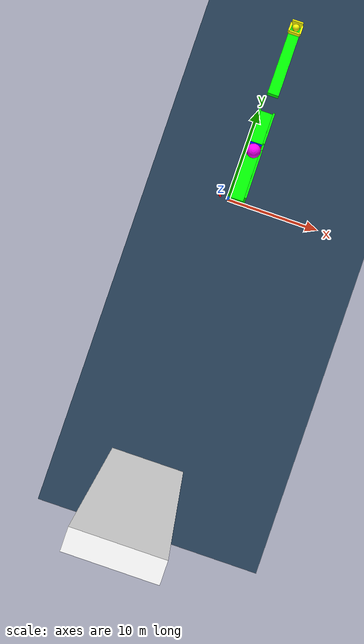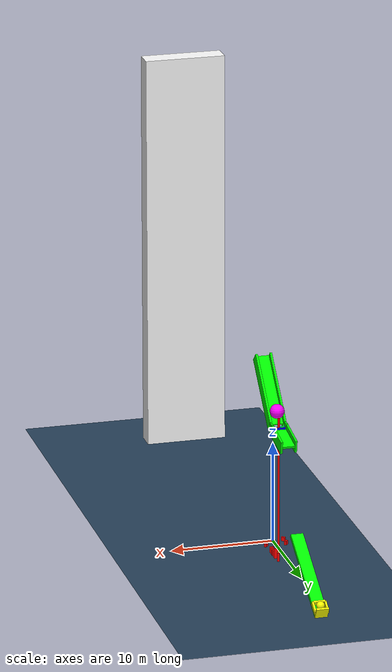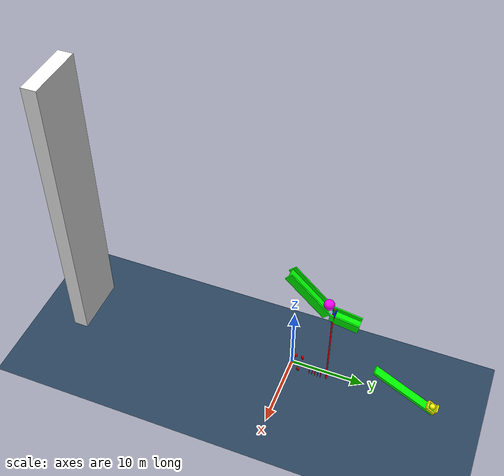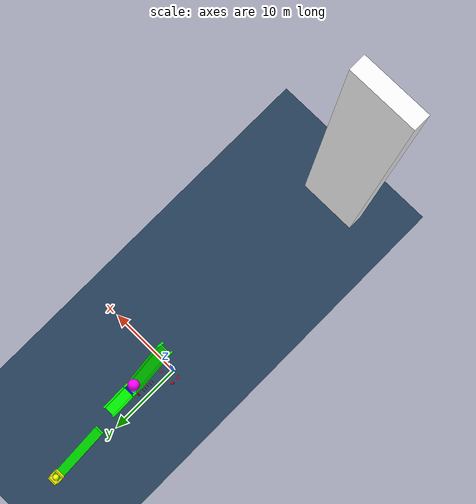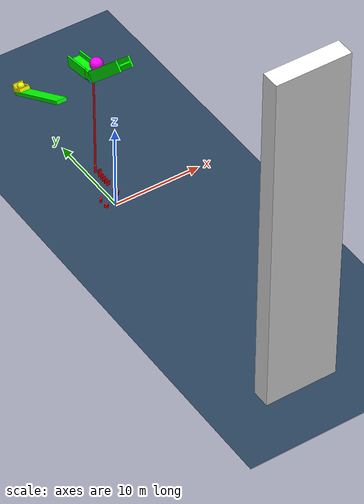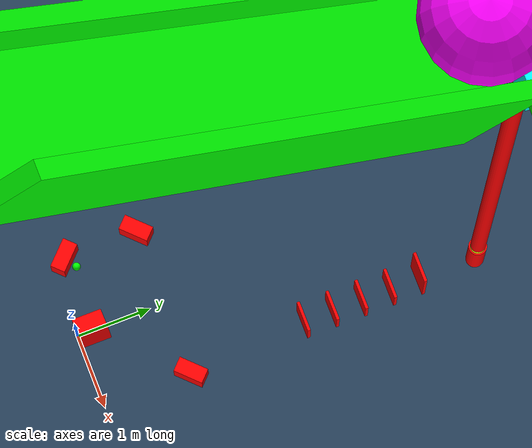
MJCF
<mujoco model="rube_goldberg_machines">

  <visual>
    <headlight diffuse="0.6 0.6 0.6"  ambient="0.3 0.3 0.3" specular="0 0 0"/>
    <rgba haze="0.15 0.25 0.35 1"/>
    <global azimuth="120" elevation="-20" realtime="1.0"/>
  </visual>

  <asset>
    <texture type="skybox" builtin="gradient" rgb1="0.3 0.5 0.7" rgb2="0 0 0" width="512"
        height="3072"/>
    <texture type="2d" name="groundplane" builtin="checker" mark="edge" rgb1="0.2 0.3 0.4"
        rgb2="0.1 0.2 0.3" markrgb="0.8 0.8 0.8" width="300" height="300"/>
    <material name="groundplane" texture="groundplane" texuniform="true" texrepeat="5 5"
        reflectance="0.1"/>
  </asset>

  <worldbody>
    <geom name="floor" size="0 0 0.05" type="plane" material="groundplane"/>

    <body pos="0.0 0.2 0.2" euler="0 45 0" name="red_slide">
      <geom  type="box" size="0.1 0.2 0.2" rgba="1 0 0 1"  solref="-10000 -10"/>
    </body>

    <body pos="-1 0.2 0.2" euler="0 0 45" name="red_slide_2">
      <geom  type="box" size="0.1 0.2 0.2" rgba="1 0 0 1"  solref="-10000 -10"/>
    </body>

    <body pos="-1 1.2 0.2" euler="0 0 -45" name="red_slide_3">
      <geom  type="box" size="0.1 0.2 0.2" rgba="1 0 0 1"  solref="-10000 -10"/>
    </body>

    <body pos="1 1.2 0.2" euler="0 0 -45" name="red_slide_4">
      <geom  type="box" size="0.1 0.2 0.2" rgba="1 0 0 1"  solref="-10000 -10"/>
    </body>

    <body pos="0.9 2.8 0.3" euler="0 0 0" name="kick_bar">
      <geom  type="box" size="0.2 0.02 0.3" rgba="1 0 0 1"  solref="-10000 -10"/>
      <freejoint/>
    </body>

    <body pos="0.9 3.2 0.3" euler="0 0 0" name="kick_bar2">
      <geom  type="box" size="0.2 0.02 0.3" rgba="1 0 0 1"  solref="-10000 -10"/>
      <freejoint/>
    </body>

    <body pos="0.9 3.6 0.3" euler="0 0 0" name="kick_bar3">
      <geom  type="box" size="0.2 0.02 0.3" rgba="1 0 0 1"  solref="-10000 -10"/>
      <freejoint/>
    </body>

    <body pos="0.9 4.0 0.3" euler="0 0 0" name="kick_bar4">
      <geom  type="box" size="0.2 0.02 0.3" rgba="1 0 0 1"  solref="-10000 -10"/>
      <freejoint/>
    </body>

    <body pos="0.9 4.4 0.5" euler="0 0 0" name="kick_bar5">
      <geom  type="box" size="0.2 0.02 0.5" rgba="1 0 0 1"  solref="-10000 -10" mass="350"/>
      <freejoint/>
    </body>

    <body pos="0.9 5.2 0.45" euler="0 0 0" name="drop_cylinder1">
      <geom  type="cylinder" size="0.12 0.45" rgba="1 0 0 1"  solref="-10000 -10" mass="100"/>
      <freejoint/>
    </body>

    <body pos="0.9 5.2 7.7" euler="0 0 0" name="drop_cylinder2">
      <geom  type="cylinder" size="0.1 6.7" rgba="1 0 0 1"  solref="-10000 -10" friction="0 0 0"/>
      <geom pos="0 0 -6.75" type="cylinder" size="0.1 0.05" rgba="1 1 0 1"  solref="-10000 -10" />
      <freejoint/>
    </body>

    <body name="holed_plate" pos="0.9 5.2 13.0">
      <geom pos="0 -0.20 0" size="0.6 0.1 0.5" type="box" group="0" rgba="0 1 1 1" />
      <geom pos="0 0.20 0" size="0.6 0.1 0.5" type="box" group="0" rgba="0 0 1 1" />
      <geom pos="-0.35 0 0" size="0.25 0.1 0.5" type="box" group="0" rgba="0 1 0 1" />
      <geom pos="0.35 0 0" size="0.25 0.1 0.5" type="box" group="0" rgba="1 0 0 1" />

      <geom pos="-0.7 0 0.4" type="box" size="0.1 0.3 0.5" rgba="0 1 0 1"  solref="-10000 -10"/>
      <geom pos="0.7 0 0.4" type="box" size="0.1 0.3 0.5" rgba="0 1 0 1"  solref="-10000 -10"/>
    </body>

    <body pos="0.9 7.1 13.0" euler="-10 0 0" name="ball_line_bottom">
      <geom  type="box" size="0.6 1.6 0.1" rgba="0 1 0 1"  solref="-10000 -10"/>
      <geom pos="-0.7 0 0" type="box" size="0.1 1.6 0.6" rgba="0 1 0 1"  solref="-10000 -10"/>
      <geom pos="0.7 0 0" type="box" size="0.1 1.6 0.6" rgba="0 1 0 1"  solref="-10000 -10"/>
    </body>

    <body pos="0.9 2.0 16.1" euler="-45 0 0" name="ball_line_up">
      <geom  type="box" size="0.6 3.6 0.1" rgba="0 1 0 1"  solref="-10000 -10"/>
      <geom pos="-0.7 0 0" type="box" size="0.1 3.6 0.6" rgba="0 1 0 1"  solref="-10000 -10"/>
      <geom pos="0.7 0 0" type="box" size="0.1 3.6 0.6" rgba="0 1 0 1"  solref="-10000 -10"/>
    </body>

    <body pos="0.9 4.6 14.9" name="big_sphere">
      <geom  size="0.7" rgba="1 0 1 1" solref="-10000 -10" density="340" />
      <freejoint/>
    </body>

    <body pos="0.9 15.6 2.6" euler="-30 0 0">
      <geom  type="box" size="0.6 4.8 0.2" rgba="0 1 0 1"  solref="-10000 -10" mass = "1"/>
      <joint name="J1" type="hinge" pos="0 -1.6 0" axis="1 0 0"  limited="true" range="0 60"/>
      <body pos="0 4.2 0.40" >
        <geom pos=" 0.6 0   0" type="box" size="0.1 0.6 0.2" rgba="1 1 0 1" mass="1"/>
        <geom pos="-0.6 0   0" type="box" size="0.1 0.6 0.2" rgba="1 1 0 1" mass="1"/>
        <geom pos=" 0   0.6 0" type="box" size="0.6 0.1 0.6" rgba="1 1 0 1" mass="1"/>
        <geom pos=" 0  -0.6 0" type="box" size="0.6 0.1 0.2" rgba="1 1 0 1" mass="1"/>
      </body>
    </body>

    <body pos="0.9 19.55 1.1" name="throw_ball">
      <freejoint/>
      <geom  size="0.4" rgba="1 1 0 1" solref="-10000 -10" density="140" />
    </body>

    <body pos="0.02 0.2 5" name="green_sphere">
      <freejoint/>
      <geom  size="0.05" rgba="0 1 0 1" solref="-10000 -10" density="1340" />
    </body>

    <body pos="0.9 -30 20" name="box_to_down" >
      <geom  type="box" size="4 1 20" rgba="1 1 1 1" mass="9"/>
      <freejoint/>
    </body>

  </worldbody>

</mujoco>
